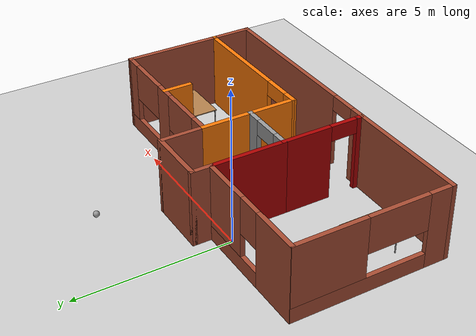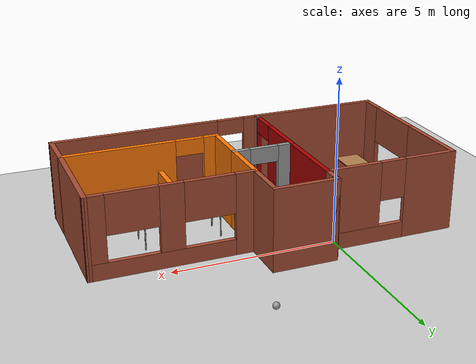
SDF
<sdf version="1.6">
 <world name="default">
  <plugin name="welcome_message" filename="libwelcome_message.so"/>
  <light name="sun" type="directional">
   <pose>0 0 10 0 -0 0</pose>
   <diffuse>0.8 0.8 0.8 1</diffuse>
   <specular>0.2 0.2 0.2 1</specular>
   <attenuation>
    <range>1000</range>
    <constant>0.9</constant>
    <linear>0.01</linear>
    <quadratic>0.001</quadratic>
   </attenuation>
   <direction>-0.5 0.1 -0.9</direction>
  </light>
  <model name="ground_plane">
   <static>1</static>
   <link name="link">
    <collision name="collision">
     <geometry><plane><normal>0 0 1</normal><size>100 100</size></plane></geometry>
     <surface><friction><ode><mu>100</mu><mu2>50</mu2></ode></friction></surface>
    </collision>
    <visual name="visual">
     <cast_shadows>0</cast_shadows>
     <geometry><plane><normal>0 0 1</normal><size>100 100</size></plane></geometry>
     <material>
      <script><uri>file://media/materials/scripts/gazebo.material</uri><name>Gazebo/Grey</name></script>
     </material>
    </visual>
   </link>
  </model>
  <gravity>0 0 -9.8</gravity>
  <magnetic_field>6e-06 2.3e-05 -4.2e-05</magnetic_field>
  <atmosphere type="adiabatic"/>
  <physics name="default_physics" default="0" type="ode">
   <max_step_size>0.001</max_step_size>
   <real_time_factor>1</real_time_factor>
   <real_time_update_rate>1000</real_time_update_rate>
  </physics>
  <scene><ambient>0.4 0.4 0.4 1</ambient><background>0.7 0.7 0.7 1</background><shadows>1</shadows></scene>
  <spherical_coordinates>
   <surface_model>EARTH_WGS84</surface_model>
   <latitude_deg>0</latitude_deg>
   <longitude_deg>0</longitude_deg>
   <elevation>0</elevation>
   <heading_deg>0</heading_deg>
  </spherical_coordinates>
  <model name="myhome">
   <pose>1.77518 -1.86888 0 0 -0 0</pose>
   <link name="Wall_21">
    <pose>-5.40037 -0.307409 0 0 -0 1.5708</pose>
    <visual name="Wall_21_Visual_0">
     <pose>-2.19882 0 1.25 0 -0 0</pose>
     <geometry><box><size>0.852368 0.15 2.5</size></box></geometry>
     <material>
      <script><uri>file://media/materials/scripts/gazebo.material</uri><name>Gazebo/Bricks</name></script>
      <ambient>0.666667 0 0 1</ambient>
     </material>
     <meta><layer>0</layer></meta>
    </visual>
    <collision name="Wall_21_Collision_0">
     <geometry><box><size>0.852368 0.15 2.5</size></box></geometry>
     <pose>-2.19882 0 1.25 0 -0 0</pose>
    </collision>
    <visual name="Wall_21_Visual_1">
     <pose>0.426184 0 0.25 0 -0 0</pose>
     <geometry><box><size>4.39763 0.15 0.5</size></box></geometry>
     <material>
      <script><uri>file://media/materials/scripts/gazebo.material</uri><name>Gazebo/Bricks</name></script>
      <ambient>0.666667 0 0 1</ambient>
     </material>
     <meta><layer>0</layer></meta>
    </visual>
    <collision name="Wall_21_Collision_1">
     <geometry><box><size>4.39763 0.15 0.5</size></box></geometry>
     <pose>0.426184 0 0.25 0 -0 0</pose>
    </collision>
    <visual name="Wall_21_Visual_2">
     <pose>1.42618 0 1.5 0 -0 0</pose>
     <geometry><box><size>2.39763 0.15 2</size></box></geometry>
     <material>
      <script><uri>file://media/materials/scripts/gazebo.material</uri><name>Gazebo/Bricks</name></script>
      <ambient>0.666667 0 0 1</ambient>
     </material>
     <meta><layer>0</layer></meta>
    </visual>
    <collision name="Wall_21_Collision_2">
     <geometry><box><size>2.39763 0.15 2</size></box></geometry>
     <pose>1.42618 0 1.5 0 -0 0</pose>
    </collision>
    <visual name="Wall_21_Visual_3">
     <pose>-0.772632 0 1.9 0 -0 0</pose>
     <geometry><box><size>2 0.15 1.2</size></box></geometry>
     <material>
      <script><uri>file://media/materials/scripts/gazebo.material</uri><name>Gazebo/Bricks</name></script>
      <ambient>0.666667 0 0 1</ambient>
     </material>
     <meta><layer>0</layer></meta>
    </visual>
    <collision name="Wall_21_Collision_3">
     <geometry><box><size>2 0.15 1.2</size></box></geometry>
     <pose>-0.772632 0 1.9 0 -0 0</pose>
    </collision>
   </link>
   <link name="Wall_49">
    <pose>-3.35037 2.2578 0 0 -0 0</pose>
    <visual name="Wall_49_Visual_0">
     <pose>-1.28919 0 1.25 0 -0 0</pose>
     <geometry><box><size>1.67163 0.15 2.5</size></box></geometry>
     <material>
      <script><uri>file://media/materials/scripts/gazebo.material</uri><name>Gazebo/Bricks</name></script>
      <ambient>1 1 1 1</ambient>
     </material>
     <meta><layer>0</layer></meta>
    </visual>
    <collision name="Wall_49_Collision_0">
     <geometry><box><size>1.67163 0.15 2.5</size></box></geometry>
     <pose>-1.28919 0 1.25 0 -0 0</pose>
    </collision>
    <visual name="Wall_49_Visual_1">
     <pose>0.835814 0 0.25 0 -0 0</pose>
     <geometry><box><size>2.57837 0.15 0.5</size></box></geometry>
     <material>
      <script><uri>file://media/materials/scripts/gazebo.material</uri><name>Gazebo/Bricks</name></script>
      <ambient>1 1 1 1</ambient>
     </material>
     <meta><layer>0</layer></meta>
    </visual>
    <collision name="Wall_49_Collision_1">
     <geometry><box><size>2.57837 0.15 0.5</size></box></geometry>
     <pose>0.835814 0 0.25 0 -0 0</pose>
    </collision>
    <visual name="Wall_49_Visual_2">
     <pose>1.23581 0 1.5 0 -0 0</pose>
     <geometry><box><size>1.77837 0.15 2</size></box></geometry>
     <material>
      <script><uri>file://media/materials/scripts/gazebo.material</uri><name>Gazebo/Bricks</name></script>
      <ambient>1 1 1 1</ambient>
     </material>
     <meta><layer>0</layer></meta>
    </visual>
    <collision name="Wall_49_Collision_2">
     <geometry><box><size>1.77837 0.15 2</size></box></geometry>
     <pose>1.23581 0 1.5 0 -0 0</pose>
    </collision>
    <visual name="Wall_49_Visual_3">
     <pose>-0.053373 0 1.9 0 -0 0</pose>
     <geometry><box><size>0.8 0.15 1.2</size></box></geometry>
     <material>
      <script><uri>file://media/materials/scripts/gazebo.material</uri><name>Gazebo/Bricks</name></script>
      <ambient>1 1 1 1</ambient>
     </material>
     <meta><layer>0</layer></meta>
    </visual>
    <collision name="Wall_49_Collision_3">
     <geometry><box><size>0.8 0.15 1.2</size></box></geometry>
     <pose>-0.053373 0 1.9 0 -0 0</pose>
    </collision>
   </link>
   <link name="Wall_50">
    <collision name="Wall_50_Collision">
     <geometry><box><size>2.53042 0.15 2.5</size></box></geometry>
     <pose>0 0 1.25 0 -0 0</pose>
    </collision>
    <visual name="Wall_50_Visual">
     <pose>0 0 1.25 0 -0 0</pose>
     <geometry><box><size>2.53042 0.15 2.5</size></box></geometry>
     <material>
      <script><uri>file://media/materials/scripts/gazebo.material</uri><name>Gazebo/Grey</name></script>
      <ambient>0.666667 0 0 1</ambient>
     </material>
     <meta><layer>0</layer></meta>
    </visual>
    <pose>-1.30037 1.06759 0 0 0 -1.5708</pose>
   </link>
   <link name="Wall_51">
    <pose>-0.37537 -0.122618 0 0 -0 0</pose>
    <visual name="Wall_51_Visual_0">
     <pose>-0.730669 0 1.25 0 -0 0</pose>
     <geometry><box><size>0.538663 0.15 2.5</size></box></geometry>
     <material>
      <script><uri>file://media/materials/scripts/gazebo.material</uri><name>Gazebo/Grey</name></script>
      <ambient>1 1 1 1</ambient>
     </material>
     <meta><layer>0</layer></meta>
    </visual>
    <collision name="Wall_51_Collision_0">
     <geometry><box><size>0.538663 0.15 2.5</size></box></geometry>
     <pose>-0.730669 0 1.25 0 -0 0</pose>
    </collision>
    <visual name="Wall_51_Visual_1">
     <pose>0.719331 0 1.25 0 -0 0</pose>
     <geometry><box><size>0.561337 0.15 2.5</size></box></geometry>
     <material>
      <script><uri>file://media/materials/scripts/gazebo.material</uri><name>Gazebo/Grey</name></script>
      <ambient>1 1 1 1</ambient>
     </material>
     <meta><layer>0</layer></meta>
    </visual>
    <collision name="Wall_51_Collision_1">
     <geometry><box><size>0.561337 0.15 2.5</size></box></geometry>
     <pose>0.719331 0 1.25 0 -0 0</pose>
    </collision>
    <visual name="Wall_51_Visual_2">
     <pose>-0.011337 0 2.25 0 -0 0</pose>
     <geometry><box><size>0.9 0.15 0.5</size></box></geometry>
     <material>
      <script><uri>file://media/materials/scripts/gazebo.material</uri><name>Gazebo/Grey</name></script>
      <ambient>1 1 1 1</ambient>
     </material>
     <meta><layer>0</layer></meta>
    </visual>
    <collision name="Wall_51_Collision_2">
     <geometry><box><size>0.9 0.15 0.5</size></box></geometry>
     <pose>-0.011337 0 2.25 0 -0 0</pose>
    </collision>
   </link>
   <link name="Wall_52">
    <collision name="Wall_52_Collision">
     <geometry><box><size>1.75 0.15 2.5</size></box></geometry>
     <pose>0 0 1.25 0 -0 0</pose>
    </collision>
    <visual name="Wall_52_Visual">
     <pose>0 0 1.25 0 -0 0</pose>
     <geometry><box><size>1.75 0.15 2.5</size></box></geometry>
     <material>
      <script><uri>file://media/materials/scripts/gazebo.material</uri><name>Gazebo/Grey</name></script>
      <ambient>0.996078 0.47451 0.0196078 1</ambient>
     </material>
     <meta><layer>0</layer></meta>
    </visual>
    <pose>0.54963 0.677382 0 0 -0 1.5708</pose>
   </link>
   <link name="Wall_53">
    <pose>2.97463 1.47738 0 0 -0 0</pose>
    <visual name="Wall_53_Visual_0">
     <pose>-2.15919 0 1.25 0 -0 0</pose>
     <geometry><box><size>0.68161 0.15 2.5</size></box></geometry>
     <material>
      <script><uri>file://media/materials/scripts/gazebo.material</uri><name>Gazebo/Bricks</name></script>
      <ambient>0.996078 0.47451 0.0196078 1</ambient>
     </material>
     <meta><layer>0</layer></meta>
    </visual>
    <collision name="Wall_53_Collision_0">
     <geometry><box><size>0.68161 0.15 2.5</size></box></geometry>
     <pose>-2.15919 0 1.25 0 -0 0</pose>
    </collision>
    <visual name="Wall_53_Visual_1">
     <pose>0.340805 0 0.25 0 -0 0</pose>
     <geometry><box><size>4.31839 0.15 0.5</size></box></geometry>
     <material>
      <script><uri>file://media/materials/scripts/gazebo.material</uri><name>Gazebo/Bricks</name></script>
      <ambient>0.996078 0.47451 0.0196078 1</ambient>
     </material>
     <meta><layer>0</layer></meta>
    </visual>
    <collision name="Wall_53_Collision_1">
     <geometry><box><size>4.31839 0.15 0.5</size></box></geometry>
     <pose>0.340805 0 0.25 0 -0 0</pose>
    </collision>
    <visual name="Wall_53_Visual_2">
     <pose>0.037857 0 1.5 0 -0 0</pose>
     <geometry><box><size>0.712493 0.15 2</size></box></geometry>
     <material>
      <script><uri>file://media/materials/scripts/gazebo.material</uri><name>Gazebo/Bricks</name></script>
      <ambient>0.996078 0.47451 0.0196078 1</ambient>
     </material>
     <meta><layer>0</layer></meta>
    </visual>
    <collision name="Wall_53_Collision_2">
     <geometry><box><size>0.712493 0.15 2</size></box></geometry>
     <pose>0.037857 0 1.5 0 -0 0</pose>
    </collision>
    <visual name="Wall_53_Visual_3">
     <pose>2.19705 0 1.5 0 -0 0</pose>
     <geometry><box><size>0.605897 0.15 2</size></box></geometry>
     <material>
      <script><uri>file://media/materials/scripts/gazebo.material</uri><name>Gazebo/Bricks</name></script>
      <ambient>0.996078 0.47451 0.0196078 1</ambient>
     </material>
     <meta><layer>0</layer></meta>
    </visual>
    <collision name="Wall_53_Collision_3">
     <geometry><box><size>0.605897 0.15 2</size></box></geometry>
     <pose>2.19705 0 1.5 0 -0 0</pose>
    </collision>
    <visual name="Wall_53_Visual_4">
     <pose>-1.06839 0 1.9 0 -0 0</pose>
     <geometry><box><size>1.5 0.15 1.2</size></box></geometry>
     <material>
      <script><uri>file://media/materials/scripts/gazebo.material</uri><name>Gazebo/Bricks</name></script>
      <ambient>0.996078 0.47451 0.0196078 1</ambient>
     </material>
     <meta><layer>0</layer></meta>
    </visual>
    <collision name="Wall_53_Collision_4">
     <geometry><box><size>1.5 0.15 1.2</size></box></geometry>
     <pose>-1.06839 0 1.9 0 -0 0</pose>
    </collision>
    <visual name="Wall_53_Visual_5">
     <pose>1.1441 0 1.9 0 -0 0</pose>
     <geometry><box><size>1.5 0.15 1.2</size></box></geometry>
     <material>
      <script><uri>file://media/materials/scripts/gazebo.material</uri><name>Gazebo/Bricks</name></script>
      <ambient>0.996078 0.47451 0.0196078 1</ambient>
     </material>
     <meta><layer>0</layer></meta>
    </visual>
    <collision name="Wall_53_Collision_5">
     <geometry><box><size>1.5 0.15 1.2</size></box></geometry>
     <pose>1.1441 0 1.9 0 -0 0</pose>
    </collision>
   </link>
   <link name="Wall_54">
    <collision name="Wall_54_Collision">
     <geometry><box><size>3.21992 0.15 2.5</size></box></geometry>
     <pose>0 0 1.25 0 -0 0</pose>
    </collision>
    <visual name="Wall_54_Visual">
     <pose>0 0 1.25 0 -0 0</pose>
     <geometry><box><size>3.21992 0.15 2.5</size></box></geometry>
     <material>
      <script><uri>file://media/materials/scripts/gazebo.material</uri><name>Gazebo/Bricks</name></script>
      <ambient>0.996078 0.47451 0.0196078 1</ambient>
     </material>
     <meta><layer>0</layer></meta>
    </visual>
    <pose>5.38442 -0.057409 0 0 0 -1.58071</pose>
   </link>
   <link name="Wall_55">
    <pose>2.95942 -1.60741 0 0 0 -3.13528</pose>
    <visual name="Wall_55_Visual_0">
     <pose>-0.706986 0 1.25 0 -0 0</pose>
     <geometry><box><size>3.55571 0.15 2.5</size></box></geometry>
     <material>
      <script><uri>file://media/materials/scripts/gazebo.material</uri><name>Gazebo/Grey</name></script>
      <ambient>0.996078 0.47451 0.0196078 1</ambient>
     </material>
     <meta><layer>0</layer></meta>
    </visual>
    <collision name="Wall_55_Collision_0">
     <geometry><box><size>3.55571 0.15 2.5</size></box></geometry>
     <pose>-0.706986 0 1.25 0 -0 0</pose>
    </collision>
    <visual name="Wall_55_Visual_1">
     <pose>2.22785 0 1.25 0 -0 0</pose>
     <geometry><box><size>0.513973 0.15 2.5</size></box></geometry>
     <material>
      <script><uri>file://media/materials/scripts/gazebo.material</uri><name>Gazebo/Grey</name></script>
      <ambient>0.996078 0.47451 0.0196078 1</ambient>
     </material>
     <meta><layer>0</layer></meta>
    </visual>
    <collision name="Wall_55_Collision_1">
     <geometry><box><size>0.513973 0.15 2.5</size></box></geometry>
     <pose>2.22785 0 1.25 0 -0 0</pose>
    </collision>
    <visual name="Wall_55_Visual_2">
     <pose>1.52087 0 2.25 0 -0 0</pose>
     <geometry><box><size>0.9 0.15 0.5</size></box></geometry>
     <material>
      <script><uri>file://media/materials/scripts/gazebo.material</uri><name>Gazebo/Grey</name></script>
      <ambient>0.996078 0.47451 0.0196078 1</ambient>
     </material>
     <meta><layer>0</layer></meta>
    </visual>
    <collision name="Wall_55_Collision_2">
     <geometry><box><size>0.9 0.15 0.5</size></box></geometry>
     <pose>1.52087 0 2.25 0 -0 0</pose>
    </collision>
   </link>
   <link name="Wall_56">
    <collision name="Wall_56_Collision">
     <geometry><box><size>1.65 0.15 2.5</size></box></geometry>
     <pose>0 0 1.25 0 -0 0</pose>
    </collision>
    <visual name="Wall_56_Visual">
     <pose>0 0 1.25 0 -0 0</pose>
     <geometry><box><size>1.65 0.15 2.5</size></box></geometry>
     <material>
      <script><uri>file://media/materials/scripts/gazebo.material</uri><name>Gazebo/Grey</name></script>
      <ambient>0.996078 0.47451 0.0196078 1</ambient>
     </material>
     <meta><layer>0</layer></meta>
    </visual>
    <pose>0.54963 -0.872618 0 0 -0 1.5708</pose>
   </link>
   <link name="Wall_64">
    <collision name="Wall_64_Collision">
     <geometry><box><size>1.41536 0.15 2.5</size></box></geometry>
     <pose>0 0 1.25 0 -0 0</pose>
    </collision>
    <visual name="Wall_64_Visual">
     <pose>0 0 1.25 0 -0 0</pose>
     <geometry><box><size>1.41536 0.15 2.5</size></box></geometry>
     <material>
      <script><uri>file://media/materials/scripts/gazebo.material</uri><name>Gazebo/Bricks</name></script>
      <ambient>1 1 1 1</ambient>
     </material>
     <meta><layer>0</layer></meta>
    </visual>
    <pose>5.37192 -2.2248 0 0 -0 1.57508</pose>
   </link>
   <link name="Wall_71">
    <collision name="Wall_71_Collision">
     <geometry><box><size>0.75 0.15 2.5</size></box></geometry>
     <pose>0 0 1.25 0 -0 0</pose>
    </collision>
    <visual name="Wall_71_Visual">
     <pose>0 0 1.25 0 -0 0</pose>
     <geometry><box><size>0.75 0.15 2.5</size></box></geometry>
     <material>
      <script><uri>file://media/materials/scripts/gazebo.material</uri><name>Gazebo/Bricks</name></script>
      <ambient>1 1 1 1</ambient>
     </material>
     <meta><layer>0</layer></meta>
    </visual>
    <pose>-1.30037 2.5578 0 0 -0 1.5708</pose>
   </link>
   <link name="Wall_72">
    <collision name="Wall_72_Collision">
     <geometry><box><size>2 0.15 2.5</size></box></geometry>
     <pose>0 0 1.25 0 -0 0</pose>
    </collision>
    <visual name="Wall_72_Visual">
     <pose>0 0 1.25 0 -0 0</pose>
     <geometry><box><size>2 0.15 2.5</size></box></geometry>
     <material>
      <script><uri>file://media/materials/scripts/gazebo.material</uri><name>Gazebo/Bricks</name></script>
      <ambient>1 1 1 1</ambient>
     </material>
     <meta><layer>0</layer></meta>
    </visual>
    <pose>-0.37537 2.8578 0 0 -0 0</pose>
   </link>
   <link name="Wall_73">
    <collision name="Wall_73_Collision">
     <geometry><box><size>1.53042 0.15 2.5</size></box></geometry>
     <pose>0 0 1.25 0 -0 0</pose>
    </collision>
    <visual name="Wall_73_Visual">
     <pose>0 0 1.25 0 -0 0</pose>
     <geometry><box><size>1.53042 0.15 2.5</size></box></geometry>
     <material>
      <script><uri>file://media/materials/scripts/gazebo.material</uri><name>Gazebo/Bricks</name></script>
      <ambient>1 1 1 1</ambient>
     </material>
     <meta><layer>0</layer></meta>
    </visual>
    <pose>0.54963 2.16759 0 0 0 -1.5708</pose>
   </link>
   <link name="Wall_75">
    <collision name="Wall_75_Collision">
     <geometry><box><size>1 0.15 2.5</size></box></geometry>
     <pose>0 0 1.25 0 -0 0</pose>
    </collision>
    <visual name="Wall_75_Visual">
     <pose>0 0 1.25 0 -0 0</pose>
     <geometry><box><size>1 0.15 2.5</size></box></geometry>
     <material>
      <script><uri>file://media/materials/scripts/gazebo.material</uri><name>Gazebo/Grey</name></script>
      <ambient>0.996078 0.47451 0.0196078 1</ambient>
     </material>
     <meta><layer>0</layer></meta>
    </visual>
    <pose>3.01249 1.04938 0 0 0 -1.5708</pose>
   </link>
   <link name="Wall_82">
    <pose>-1.30037 -1.42262 0 0 0 -1.5708</pose>
    <visual name="Wall_82_Visual_0">
     <pose>-0.536175 0 1.25 0 -0 0</pose>
     <geometry><box><size>1.67765 0.15 2.5</size></box></geometry>
     <material>
      <script><uri>file://media/materials/scripts/gazebo.material</uri><name>Gazebo/Grey</name></script>
      <ambient>0.666667 0 0 1</ambient>
     </material>
     <meta><layer>0</layer></meta>
    </visual>
    <collision name="Wall_82_Collision_0">
     <geometry><box><size>1.67765 0.15 2.5</size></box></geometry>
     <pose>-0.536175 0 1.25 0 -0 0</pose>
    </collision>
    <visual name="Wall_82_Visual_1">
     <pose>1.28883 0 1.25 0 -0 0</pose>
     <geometry><box><size>0.172351 0.15 2.5</size></box></geometry>
     <material>
      <script><uri>file://media/materials/scripts/gazebo.material</uri><name>Gazebo/Grey</name></script>
      <ambient>0.666667 0 0 1</ambient>
     </material>
     <meta><layer>0</layer></meta>
    </visual>
    <collision name="Wall_82_Collision_1">
     <geometry><box><size>0.172351 0.15 2.5</size></box></geometry>
     <pose>1.28883 0 1.25 0 -0 0</pose>
    </collision>
    <visual name="Wall_82_Visual_2">
     <pose>0.752649 0 2.25 0 -0 0</pose>
     <geometry><box><size>0.9 0.15 0.5</size></box></geometry>
     <material>
      <script><uri>file://media/materials/scripts/gazebo.material</uri><name>Gazebo/Grey</name></script>
      <ambient>0.666667 0 0 1</ambient>
     </material>
     <meta><layer>0</layer></meta>
    </visual>
    <collision name="Wall_82_Collision_2">
     <geometry><box><size>0.9 0.15 0.5</size></box></geometry>
     <pose>0.752649 0 2.25 0 -0 0</pose>
    </collision>
   </link>
   <link name="Wall_83">
    <collision name="Wall_83_Collision">
     <geometry><box><size>0.15 0.15 2.5</size></box></geometry>
     <pose>0 0 1.25 0 -0 0</pose>
    </collision>
    <visual name="Wall_83_Visual">
     <pose>0 0 1.25 0 -0 0</pose>
     <geometry><box><size>0.15 0.15 2.5</size></box></geometry>
     <material>
      <script><uri>file://media/materials/scripts/gazebo.material</uri><name>Gazebo/Grey</name></script>
      <ambient>1 1 1 1</ambient>
     </material>
     <meta><layer>0</layer></meta>
    </visual>
    <pose>-1.30037 -2.72262 0 0 -0 0</pose>
   </link>
   <link name="Wall_85">
    <collision name="Wall_85_Collision">
     <geometry><box><size>4.25 0.15 2.5</size></box></geometry>
     <pose>0 0 1.25 0 -0 0</pose>
    </collision>
    <visual name="Wall_85_Visual">
     <pose>0 0 1.25 0 -0 0</pose>
     <geometry><box><size>4.25 0.15 2.5</size></box></geometry>
     <material>
      <script><uri>file://media/materials/scripts/gazebo.material</uri><name>Gazebo/Bricks</name></script>
      <ambient>1 1 1 1</ambient>
     </material>
     <meta><layer>0</layer></meta>
    </visual>
    <pose>-3.35037 -2.85741 0 0 -0 0</pose>
   </link>
   <link name="Wall_86">
    <pose>2.03713 -2.85741 0 0 -0 0</pose>
    <visual name="Wall_86_Visual_0">
     <pose>-3.1352 0 1.25 0 -0 0</pose>
     <geometry><box><size>0.554602 0.15 2.5</size></box></geometry>
     <material>
      <script><uri>file://media/materials/scripts/gazebo.material</uri><name>Gazebo/Bricks</name></script>
      <ambient>1 1 1 1</ambient>
     </material>
     <meta><layer>0</layer></meta>
    </visual>
    <collision name="Wall_86_Collision_0">
     <geometry><box><size>0.554602 0.15 2.5</size></box></geometry>
     <pose>-3.1352 0 1.25 0 -0 0</pose>
    </collision>
    <visual name="Wall_86_Visual_1">
     <pose>0.727301 0 1.25 0 -0 0</pose>
     <geometry><box><size>5.3704 0.15 2.5</size></box></geometry>
     <material>
      <script><uri>file://media/materials/scripts/gazebo.material</uri><name>Gazebo/Bricks</name></script>
      <ambient>1 1 1 1</ambient>
     </material>
     <meta><layer>0</layer></meta>
    </visual>
    <collision name="Wall_86_Collision_1">
     <geometry><box><size>5.3704 0.15 2.5</size></box></geometry>
     <pose>0.727301 0 1.25 0 -0 0</pose>
    </collision>
    <visual name="Wall_86_Visual_2">
     <pose>-2.4079 0 2.25 0 -0 0</pose>
     <geometry><box><size>0.9 0.15 0.5</size></box></geometry>
     <material>
      <script><uri>file://media/materials/scripts/gazebo.material</uri><name>Gazebo/Bricks</name></script>
      <ambient>1 1 1 1</ambient>
     </material>
     <meta><layer>0</layer></meta>
    </visual>
    <collision name="Wall_86_Collision_2">
     <geometry><box><size>0.9 0.15 0.5</size></box></geometry>
     <pose>-2.4079 0 2.25 0 -0 0</pose>
    </collision>
   </link>
   <static>1</static>
  </model>
  <model name="bookshelf">
   <static>1</static>
   <link name="link">
    <inertial><mass>1</mass></inertial>
    <collision name="back">
     <pose>0 0.005 0.6 0 -0 0</pose>
     <geometry><box><size>0.9 0.01 1.2</size></box></geometry>
    </collision>
    <visual name="visual1">
     <pose>0 0.005 0.6 0 -0 0</pose>
     <geometry><box><size>0.9 0.01 1.2</size></box></geometry>
     <material>
      <script><uri>file://media/materials/scripts/gazebo.material</uri><name>Gazebo/Wood</name></script>
     </material>
    </visual>
    <collision name="left_side">
     <pose>0.45 -0.195 0.6 0 -0 0</pose>
     <geometry><box><size>0.02 0.4 1.2</size></box></geometry>
    </collision>
    <visual name="visual2">
     <pose>0.45 -0.195 0.6 0 -0 0</pose>
     <geometry><box><size>0.02 0.4 1.2</size></box></geometry>
     <material>
      <script><uri>file://media/materials/scripts/gazebo.material</uri><name>Gazebo/Wood</name></script>
     </material>
    </visual>
    <collision name="right_side">
     <pose>-0.45 -0.195 0.6 0 -0 0</pose>
     <geometry><box><size>0.02 0.4 1.2</size></box></geometry>
    </collision>
    <visual name="visual3">
     <pose>-0.45 -0.195 0.6 0 -0 0</pose>
     <geometry><box><size>0.02 0.4 1.2</size></box></geometry>
     <material>
      <script><uri>file://media/materials/scripts/gazebo.material</uri><name>Gazebo/Wood</name></script>
     </material>
    </visual>
    <collision name="bottom">
     <pose>0 -0.195 0.03 0 -0 0</pose>
     <geometry><box><size>0.88 0.4 0.06</size></box></geometry>
    </collision>
    <visual name="visual4">
     <pose>0 -0.195 0.03 0 -0 0</pose>
     <geometry><box><size>0.88 0.4 0.06</size></box></geometry>
     <material>
      <script><uri>file://media/materials/scripts/gazebo.material</uri><name>Gazebo/Wood</name></script>
     </material>
    </visual>
    <collision name="top">
     <pose>0 -0.195 1.19 0 -0 0</pose>
     <geometry><box><size>0.88 0.4 0.02</size></box></geometry>
    </collision>
    <visual name="visual5">
     <pose>0 -0.195 1.19 0 -0 0</pose>
     <geometry><box><size>0.88 0.4 0.02</size></box></geometry>
     <material>
      <script><uri>file://media/materials/scripts/gazebo.material</uri><name>Gazebo/Wood</name></script>
     </material>
    </visual>
    <collision name="low_shelf">
     <pose>0 -0.195 0.43 0 -0 0</pose>
     <geometry><box><size>0.88 0.4 0.02</size></box></geometry>
    </collision>
    <visual name="visual6">
     <pose>0 -0.195 0.43 0 -0 0</pose>
     <geometry><box><size>0.88 0.4 0.02</size></box></geometry>
     <material>
      <script><uri>file://media/materials/scripts/gazebo.material</uri><name>Gazebo/Wood</name></script>
     </material>
    </visual>
    <collision name="high_shelf">
     <pose>0 -0.195 0.8 0 -0 0</pose>
     <geometry><box><size>0.88 0.4 0.02</size></box></geometry>
    </collision>
    <visual name="visual7">
     <pose>0 -0.195 0.8 0 -0 0</pose>
     <geometry><box><size>0.88 0.4 0.02</size></box></geometry>
     <material>
      <script><uri>file://media/materials/scripts/gazebo.material</uri><name>Gazebo/Wood</name></script>
     </material>
    </visual>
   </link>
   <pose>1.36245 0.894727 0 0 -0 0</pose>
  </model>
  <model name="bookshelf_0">
   <static>1</static>
   <link name="link">
    <inertial><mass>1</mass></inertial>
    <collision name="back">
     <pose>0 0.005 0.6 0 -0 0</pose>
     <geometry><box><size>0.9 0.01 1.2</size></box></geometry>
    </collision>
    <visual name="visual1">
     <pose>0 0.005 0.6 0 -0 0</pose>
     <geometry><box><size>0.9 0.01 1.2</size></box></geometry>
     <material>
      <script><uri>file://media/materials/scripts/gazebo.material</uri><name>Gazebo/Wood</name></script>
     </material>
    </visual>
    <collision name="left_side">
     <pose>0.45 -0.195 0.6 0 -0 0</pose>
     <geometry><box><size>0.02 0.4 1.2</size></box></geometry>
    </collision>
    <visual name="visual2">
     <pose>0.45 -0.195 0.6 0 -0 0</pose>
     <geometry><box><size>0.02 0.4 1.2</size></box></geometry>
     <material>
      <script><uri>file://media/materials/scripts/gazebo.material</uri><name>Gazebo/Wood</name></script>
     </material>
    </visual>
    <collision name="right_side">
     <pose>-0.45 -0.195 0.6 0 -0 0</pose>
     <geometry><box><size>0.02 0.4 1.2</size></box></geometry>
    </collision>
    <visual name="visual3">
     <pose>-0.45 -0.195 0.6 0 -0 0</pose>
     <geometry><box><size>0.02 0.4 1.2</size></box></geometry>
     <material>
      <script><uri>file://media/materials/scripts/gazebo.material</uri><name>Gazebo/Wood</name></script>
     </material>
    </visual>
    <collision name="bottom">
     <pose>0 -0.195 0.03 0 -0 0</pose>
     <geometry><box><size>0.88 0.4 0.06</size></box></geometry>
    </collision>
    <visual name="visual4">
     <pose>0 -0.195 0.03 0 -0 0</pose>
     <geometry><box><size>0.88 0.4 0.06</size></box></geometry>
     <material>
      <script><uri>file://media/materials/scripts/gazebo.material</uri><name>Gazebo/Wood</name></script>
     </material>
    </visual>
    <collision name="top">
     <pose>0 -0.195 1.19 0 -0 0</pose>
     <geometry><box><size>0.88 0.4 0.02</size></box></geometry>
    </collision>
    <visual name="visual5">
     <pose>0 -0.195 1.19 0 -0 0</pose>
     <geometry><box><size>0.88 0.4 0.02</size></box></geometry>
     <material>
      <script><uri>file://media/materials/scripts/gazebo.material</uri><name>Gazebo/Wood</name></script>
     </material>
    </visual>
    <collision name="low_shelf">
     <pose>0 -0.195 0.43 0 -0 0</pose>
     <geometry><box><size>0.88 0.4 0.02</size></box></geometry>
    </collision>
    <visual name="visual6">
     <pose>0 -0.195 0.43 0 -0 0</pose>
     <geometry><box><size>0.88 0.4 0.02</size></box></geometry>
     <material>
      <script><uri>file://media/materials/scripts/gazebo.material</uri><name>Gazebo/Wood</name></script>
     </material>
    </visual>
    <collision name="high_shelf">
     <pose>0 -0.195 0.8 0 -0 0</pose>
     <geometry><box><size>0.88 0.4 0.02</size></box></geometry>
    </collision>
    <visual name="visual7">
     <pose>0 -0.195 0.8 0 -0 0</pose>
     <geometry><box><size>0.88 0.4 0.02</size></box></geometry>
     <material>
      <script><uri>file://media/materials/scripts/gazebo.material</uri><name>Gazebo/Wood</name></script>
     </material>
    </visual>
   </link>
   <pose>0.54884 -0.601497 0 0 -0 1.56747</pose>
  </model>
  <model name="bookshelf_1">
   <static>1</static>
   <link name="link">
    <inertial><mass>1</mass></inertial>
    <collision name="back">
     <pose>0 0.005 0.6 0 -0 0</pose>
     <geometry><box><size>0.9 0.01 1.2</size></box></geometry>
    </collision>
    <visual name="visual1">
     <pose>0 0.005 0.6 0 -0 0</pose>
     <geometry><box><size>0.9 0.01 1.2</size></box></geometry>
     <material>
      <script><uri>file://media/materials/scripts/gazebo.material</uri><name>Gazebo/Wood</name></script>
     </material>
    </visual>
    <collision name="left_side">
     <pose>0.45 -0.195 0.6 0 -0 0</pose>
     <geometry><box><size>0.02 0.4 1.2</size></box></geometry>
    </collision>
    <visual name="visual2">
     <pose>0.45 -0.195 0.6 0 -0 0</pose>
     <geometry><box><size>0.02 0.4 1.2</size></box></geometry>
     <material>
      <script><uri>file://media/materials/scripts/gazebo.material</uri><name>Gazebo/Wood</name></script>
     </material>
    </visual>
    <collision name="right_side">
     <pose>-0.45 -0.195 0.6 0 -0 0</pose>
     <geometry><box><size>0.02 0.4 1.2</size></box></geometry>
    </collision>
    <visual name="visual3">
     <pose>-0.45 -0.195 0.6 0 -0 0</pose>
     <geometry><box><size>0.02 0.4 1.2</size></box></geometry>
     <material>
      <script><uri>file://media/materials/scripts/gazebo.material</uri><name>Gazebo/Wood</name></script>
     </material>
    </visual>
    <collision name="bottom">
     <pose>0 -0.195 0.03 0 -0 0</pose>
     <geometry><box><size>0.88 0.4 0.06</size></box></geometry>
    </collision>
    <visual name="visual4">
     <pose>0 -0.195 0.03 0 -0 0</pose>
     <geometry><box><size>0.88 0.4 0.06</size></box></geometry>
     <material>
      <script><uri>file://media/materials/scripts/gazebo.material</uri><name>Gazebo/Wood</name></script>
     </material>
    </visual>
    <collision name="top">
     <pose>0 -0.195 1.19 0 -0 0</pose>
     <geometry><box><size>0.88 0.4 0.02</size></box></geometry>
    </collision>
    <visual name="visual5">
     <pose>0 -0.195 1.19 0 -0 0</pose>
     <geometry><box><size>0.88 0.4 0.02</size></box></geometry>
     <material>
      <script><uri>file://media/materials/scripts/gazebo.material</uri><name>Gazebo/Wood</name></script>
     </material>
    </visual>
    <collision name="low_shelf">
     <pose>0 -0.195 0.43 0 -0 0</pose>
     <geometry><box><size>0.88 0.4 0.02</size></box></geometry>
    </collision>
    <visual name="visual6">
     <pose>0 -0.195 0.43 0 -0 0</pose>
     <geometry><box><size>0.88 0.4 0.02</size></box></geometry>
     <material>
      <script><uri>file://media/materials/scripts/gazebo.material</uri><name>Gazebo/Wood</name></script>
     </material>
    </visual>
    <collision name="high_shelf">
     <pose>0 -0.195 0.8 0 -0 0</pose>
     <geometry><box><size>0.88 0.4 0.02</size></box></geometry>
    </collision>
    <visual name="visual7">
     <pose>0 -0.195 0.8 0 -0 0</pose>
     <geometry><box><size>0.88 0.4 0.02</size></box></geometry>
     <material>
      <script><uri>file://media/materials/scripts/gazebo.material</uri><name>Gazebo/Wood</name></script>
     </material>
    </visual>
   </link>
   <pose>2.2247 -0.625547 0 0 0 -1.58004</pose>
  </model>
  <model name="table">
   <static>1</static>
   <link name="link">
    <collision name="surface">
     <pose>0 0 1 0 -0 0</pose>
     <geometry><box><size>1.5 0.8 0.03</size></box></geometry>
     <surface><friction><ode><mu>0.6</mu><mu2>0.6</mu2></ode></friction></surface>
    </collision>
    <visual name="visual1">
     <pose>0 0 1 0 -0 0</pose>
     <geometry><box><size>1.5 0.8 0.03</size></box></geometry>
     <material>
      <script><uri>file://media/materials/scripts/gazebo.material</uri><name>Gazebo/Wood</name></script>
     </material>
    </visual>
    <collision name="front_left_leg">
     <pose>0.68 0.38 0.5 0 -0 0</pose>
     <geometry><cylinder><radius>0.02</radius><length>1</length></cylinder></geometry>
    </collision>
    <visual name="front_left_leg">
     <pose>0.68 0.38 0.5 0 -0 0</pose>
     <geometry><cylinder><radius>0.02</radius><length>1</length></cylinder></geometry>
     <material>
      <script><uri>file://media/materials/scripts/gazebo.material</uri><name>Gazebo/Grey</name></script>
     </material>
    </visual>
    <collision name="front_right_leg">
     <pose>0.68 -0.38 0.5 0 -0 0</pose>
     <geometry><cylinder><radius>0.02</radius><length>1</length></cylinder></geometry>
    </collision>
    <visual name="front_right_leg">
     <pose>0.68 -0.38 0.5 0 -0 0</pose>
     <geometry><cylinder><radius>0.02</radius><length>1</length></cylinder></geometry>
     <material>
      <script><uri>file://media/materials/scripts/gazebo.material</uri><name>Gazebo/Grey</name></script>
     </material>
    </visual>
    <collision name="back_right_leg">
     <pose>-0.68 -0.38 0.5 0 -0 0</pose>
     <geometry><cylinder><radius>0.02</radius><length>1</length></cylinder></geometry>
    </collision>
    <visual name="back_right_leg">
     <pose>-0.68 -0.38 0.5 0 -0 0</pose>
     <geometry><cylinder><radius>0.02</radius><length>1</length></cylinder></geometry>
     <material>
      <script><uri>file://media/materials/scripts/gazebo.material</uri><name>Gazebo/Grey</name></script>
     </material>
    </visual>
    <collision name="back_left_leg">
     <pose>-0.68 0.38 0.5 0 -0 0</pose>
     <geometry><cylinder><radius>0.02</radius><length>1</length></cylinder></geometry>
    </collision>
    <visual name="back_left_leg">
     <pose>-0.68 0.38 0.5 0 -0 0</pose>
     <geometry><cylinder><radius>0.02</radius><length>1</length></cylinder></geometry>
     <material>
      <script><uri>file://media/materials/scripts/gazebo.material</uri><name>Gazebo/Grey</name></script>
     </material>
    </visual>
   </link>
   <pose>-2.37664 -3.00957 0 0 0 -1.57607</pose>
  </model>
  <model name="table_0">
   <static>1</static>
   <link name="link">
    <collision name="surface">
     <pose>0 0 1 0 -0 0</pose>
     <geometry><box><size>1.5 0.8 0.03</size></box></geometry>
     <surface><friction><ode><mu>0.6</mu><mu2>0.6</mu2></ode></friction></surface>
    </collision>
    <visual name="visual1">
     <pose>0 0 1 0 -0 0</pose>
     <geometry><box><size>1.5 0.8 0.03</size></box></geometry>
     <material>
      <script><uri>file://media/materials/scripts/gazebo.material</uri><name>Gazebo/Wood</name></script>
     </material>
    </visual>
    <collision name="front_left_leg">
     <pose>0.68 0.38 0.5 0 -0 0</pose>
     <geometry><cylinder><radius>0.02</radius><length>1</length></cylinder></geometry>
    </collision>
    <visual name="front_left_leg">
     <pose>0.68 0.38 0.5 0 -0 0</pose>
     <geometry><cylinder><radius>0.02</radius><length>1</length></cylinder></geometry>
     <material>
      <script><uri>file://media/materials/scripts/gazebo.material</uri><name>Gazebo/Grey</name></script>
     </material>
    </visual>
    <collision name="front_right_leg">
     <pose>0.68 -0.38 0.5 0 -0 0</pose>
     <geometry><cylinder><radius>0.02</radius><length>1</length></cylinder></geometry>
    </collision>
    <visual name="front_right_leg">
     <pose>0.68 -0.38 0.5 0 -0 0</pose>
     <geometry><cylinder><radius>0.02</radius><length>1</length></cylinder></geometry>
     <material>
      <script><uri>file://media/materials/scripts/gazebo.material</uri><name>Gazebo/Grey</name></script>
     </material>
    </visual>
    <collision name="back_right_leg">
     <pose>-0.68 -0.38 0.5 0 -0 0</pose>
     <geometry><cylinder><radius>0.02</radius><length>1</length></cylinder></geometry>
    </collision>
    <visual name="back_right_leg">
     <pose>-0.68 -0.38 0.5 0 -0 0</pose>
     <geometry><cylinder><radius>0.02</radius><length>1</length></cylinder></geometry>
     <material>
      <script><uri>file://media/materials/scripts/gazebo.material</uri><name>Gazebo/Grey</name></script>
     </material>
    </visual>
    <collision name="back_left_leg">
     <pose>-0.68 0.38 0.5 0 -0 0</pose>
     <geometry><cylinder><radius>0.02</radius><length>1</length></cylinder></geometry>
    </collision>
    <visual name="back_left_leg">
     <pose>-0.68 0.38 0.5 0 -0 0</pose>
     <geometry><cylinder><radius>0.02</radius><length>1</length></cylinder></geometry>
     <material>
      <script><uri>file://media/materials/scripts/gazebo.material</uri><name>Gazebo/Grey</name></script>
     </material>
    </visual>
   </link>
   <pose>3.59261 -2.02108 0 0 -0 0</pose>
  </model>
  <model name="table_1">
   <static>1</static>
   <link name="link">
    <collision name="surface">
     <pose>0 0 1 0 -0 0</pose>
     <geometry><box><size>1.5 0.8 0.03</size></box></geometry>
     <surface><friction><ode><mu>0.6</mu><mu2>0.6</mu2></ode></friction></surface>
    </collision>
    <visual name="visual1">
     <pose>0 0 1 0 -0 0</pose>
     <geometry><box><size>1.5 0.8 0.03</size></box></geometry>
     <material>
      <script><uri>file://media/materials/scripts/gazebo.material</uri><name>Gazebo/Wood</name></script>
     </material>
    </visual>
    <collision name="front_left_leg">
     <pose>0.68 0.38 0.5 0 -0 0</pose>
     <geometry><cylinder><radius>0.02</radius><length>1</length></cylinder></geometry>
    </collision>
    <visual name="front_left_leg">
     <pose>0.68 0.38 0.5 0 -0 0</pose>
     <geometry><cylinder><radius>0.02</radius><length>1</length></cylinder></geometry>
     <material>
      <script><uri>file://media/materials/scripts/gazebo.material</uri><name>Gazebo/Grey</name></script>
     </material>
    </visual>
    <collision name="front_right_leg">
     <pose>0.68 -0.38 0.5 0 -0 0</pose>
     <geometry><cylinder><radius>0.02</radius><length>1</length></cylinder></geometry>
    </collision>
    <visual name="front_right_leg">
     <pose>0.68 -0.38 0.5 0 -0 0</pose>
     <geometry><cylinder><radius>0.02</radius><length>1</length></cylinder></geometry>
     <material>
      <script><uri>file://media/materials/scripts/gazebo.material</uri><name>Gazebo/Grey</name></script>
     </material>
    </visual>
    <collision name="back_right_leg">
     <pose>-0.68 -0.38 0.5 0 -0 0</pose>
     <geometry><cylinder><radius>0.02</radius><length>1</length></cylinder></geometry>
    </collision>
    <visual name="back_right_leg">
     <pose>-0.68 -0.38 0.5 0 -0 0</pose>
     <geometry><cylinder><radius>0.02</radius><length>1</length></cylinder></geometry>
     <material>
      <script><uri>file://media/materials/scripts/gazebo.material</uri><name>Gazebo/Grey</name></script>
     </material>
    </visual>
    <collision name="back_left_leg">
     <pose>-0.68 0.38 0.5 0 -0 0</pose>
     <geometry><cylinder><radius>0.02</radius><length>1</length></cylinder></geometry>
    </collision>
    <visual name="back_left_leg">
     <pose>-0.68 0.38 0.5 0 -0 0</pose>
     <geometry><cylinder><radius>0.02</radius><length>1</length></cylinder></geometry>
     <material>
      <script><uri>file://media/materials/scripts/gazebo.material</uri><name>Gazebo/Grey</name></script>
     </material>
    </visual>
   </link>
   <pose>5.91265 -1.99673 0 0 -0 0</pose>
  </model>
  <model name="my_ball">
   <link name="link">
    <inertial>
     <mass>1</mass>
     <inertia><ixx>0.1</ixx><ixy>0</ixy><ixz>0</ixz><iyy>0.1</iyy><iyz>0</iyz><izz>0.1</izz></inertia>
    </inertial>
    <visual name="visual">
     <geometry><sphere><radius>0.1</radius></sphere></geometry>
     <material>
      <script><name>Gazebo/Grey</name><uri>file://media/materials/scripts/gazebo.material</uri></script>
      <shader type="pixel"><normal_map>__default__</normal_map></shader>
      <ambient>1 1 1 1</ambient>
      <diffuse>1 1 1 1</diffuse>
      <specular>1 1 1 1</specular>
      <emissive>1 1 1 1</emissive>
     </material>
    </visual>
    <collision name="collision">
     <geometry><sphere><radius>0.1</radius></sphere></geometry>
     <surface>
      <friction>
       <ode><mu>1</mu><mu2>1</mu2><fdir1>0 0 0</fdir1><slip1>0</slip1><slip2>0</slip2></ode>
       <torsional>
        <coefficient>1</coefficient>
        <patch_radius>0</patch_radius>
        <surface_radius>0</surface_radius>
        <use_patch_radius>1</use_patch_radius>
        <ode><slip>0</slip></ode>
       </torsional>
      </friction>
      <bounce><restitution_coefficient>0</restitution_coefficient><threshold>1e+06</threshold></bounce>
      <contact>
       <collide_without_contact>0</collide_without_contact>
       <collide_without_contact_bitmask>1</collide_without_contact_bitmask>
       <collide_bitmask>1</collide_bitmask>
       <ode>
        <soft_cfm>0</soft_cfm>
        <soft_erp>0.2</soft_erp>
        <kp>1e+13</kp>
        <kd>1</kd>
        <max_vel>0.01</max_vel>
        <min_depth>0</min_depth>
       </ode>
       <bullet>
        <split_impulse>1</split_impulse>
        <split_impulse_penetration_threshold>-0.01</split_impulse_penetration_threshold>
        <soft_cfm>0</soft_cfm>
        <soft_erp>0.2</soft_erp>
        <kp>1e+13</kp>
        <kd>1</kd>
       </bullet>
      </contact>
     </surface>
    </collision>
   </link>
   <static>0</static>
   <pose>3.09111 2.84809 0.1 0 -0 0</pose>
  </model>
 </world>
</sdf>
